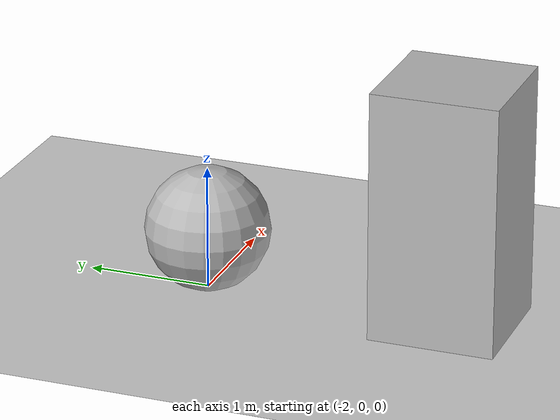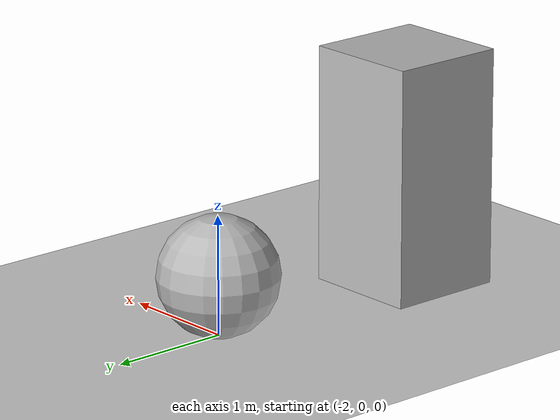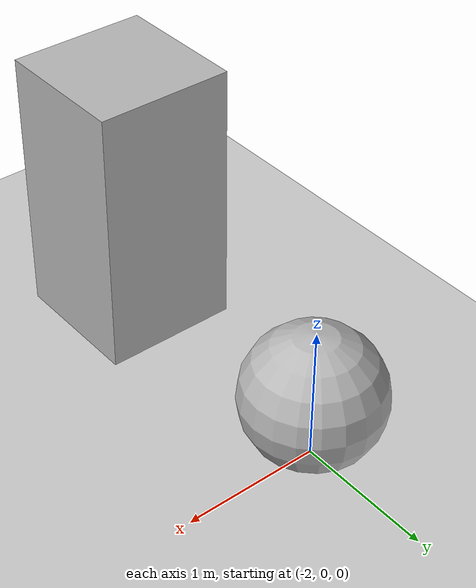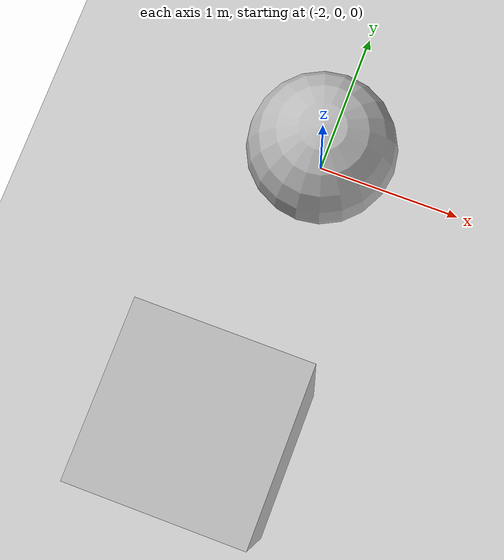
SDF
<?xml version="1.0"?>
<sdf version="1.4">
  <world name="default">

    <!-- Ground Plane -->
    <include>
      <uri>model://ground_plane</uri>
    </include>

    <include>
      <uri>model://sun</uri>
    </include>

    <model name="box1">
      <pose>-2 -2 1 0 0 0</pose>
      <link name="link">
        <collision name="collision">
          <geometry>
            <box>
              <size>1 1 2</size>
            </box>
          </geometry>
        </collision>

        <visual name="visual">
          <plugin name="client1" filename="build/libClient1.so"/>
          <geometry>
            <box>
              <size>1 1 2</size>
            </box>
          </geometry>
        </visual>
      </link>
    </model>

    <model name="unit_sphere_1">
      <pose>-2 0 0.5 0 0 0</pose>
      <link name="link">
        <collision name="collision">
          <geometry>
            <sphere>
              <radius>0.5</radius>
            </sphere>
          </geometry>
        </collision>

        <visual name="visual">
          <geometry>
            <sphere>
              <radius>0.5</radius>
            </sphere>
          </geometry>
        </visual>
      </link>
    </model>

  </world>
</sdf>
